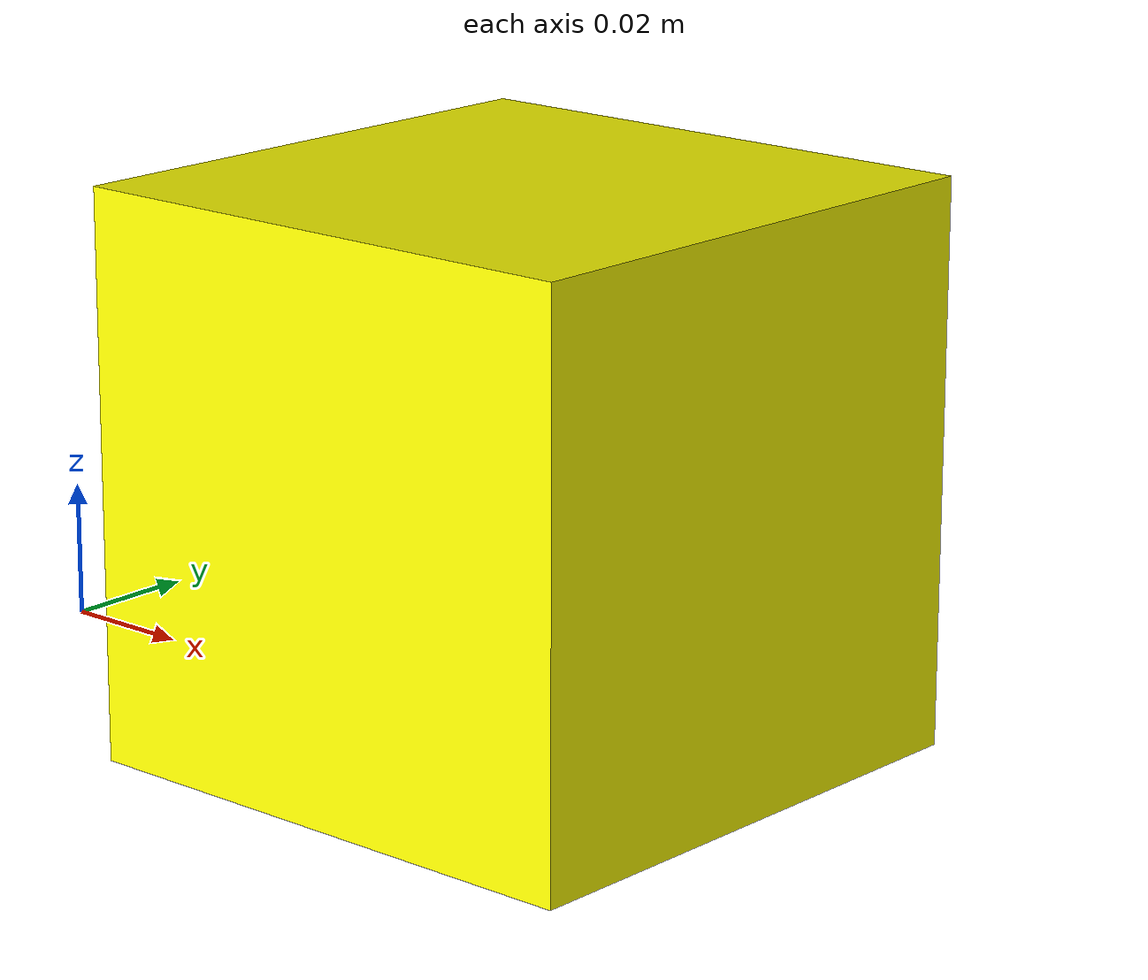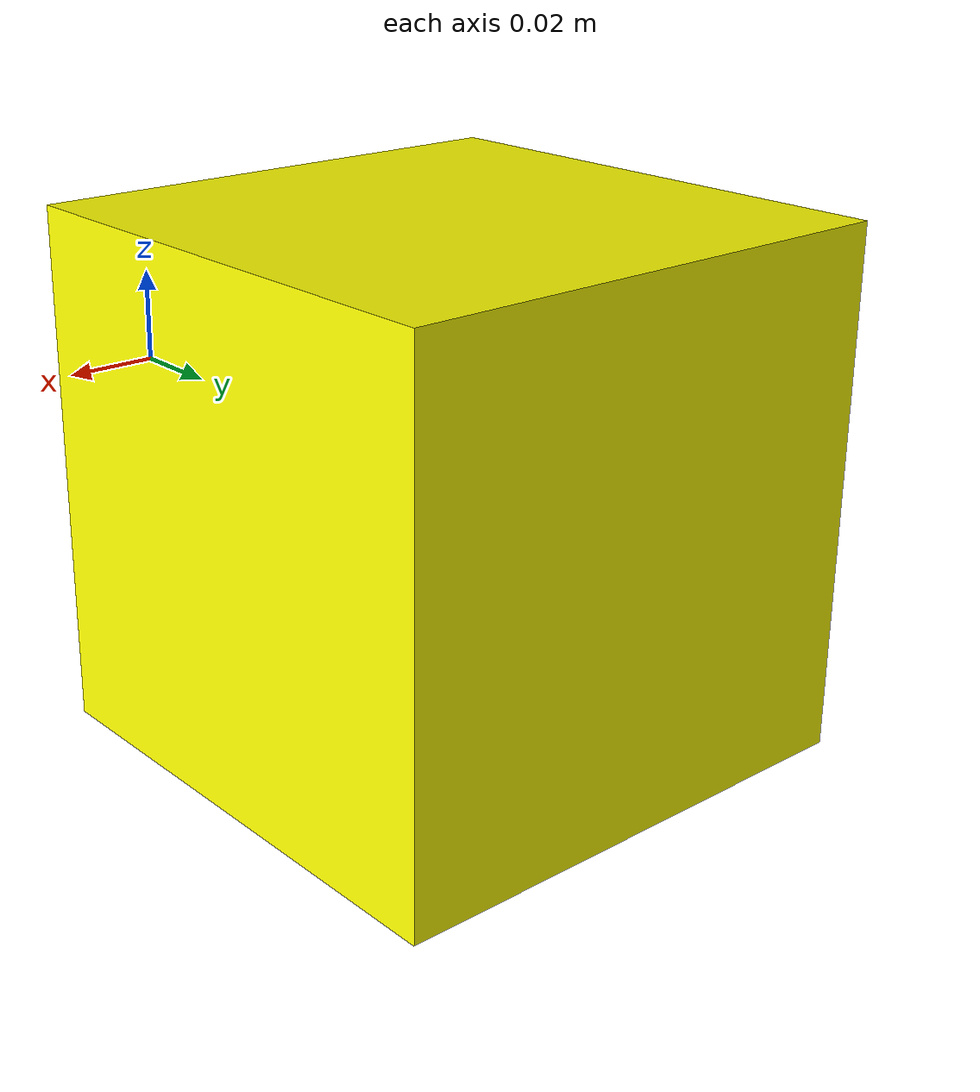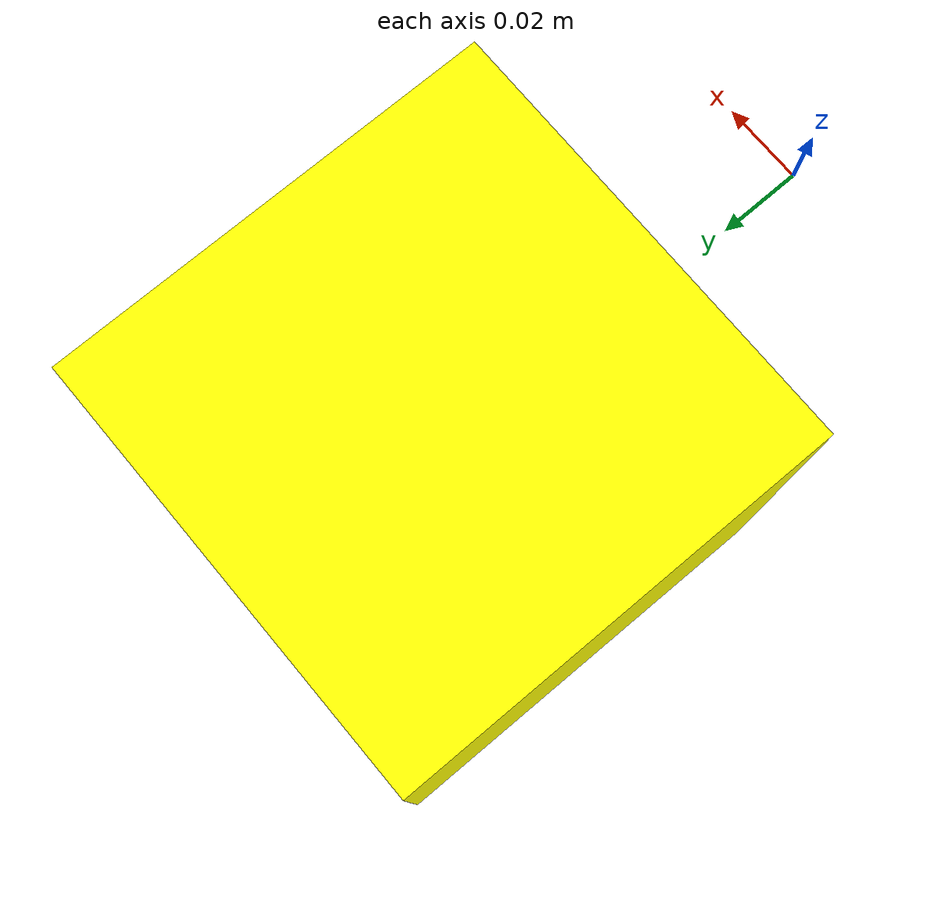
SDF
<?xml version="1.0" ?>
<sdf version="1.6">
  <model name="box_0">
    <static>false</static> <!-- Set to true if you don't want the box to move -->
    <link name="link">
      <visual name="visual">
        <geometry>
          <mesh>
            <uri>model://box_0/meshes/aruco_box_0_.dae</uri> <!-- Path to your .dae file -->
          </mesh>
        </geometry>
      </visual>
      <collision name="collision">
        <geometry>
          <mesh>
            <uri>model://box_0/meshes/aruco_box_0_.dae</uri> <!-- Path to your .dae file -->
          </mesh>
        </geometry>
      </collision>
    </link>
  </model>
</sdf>
